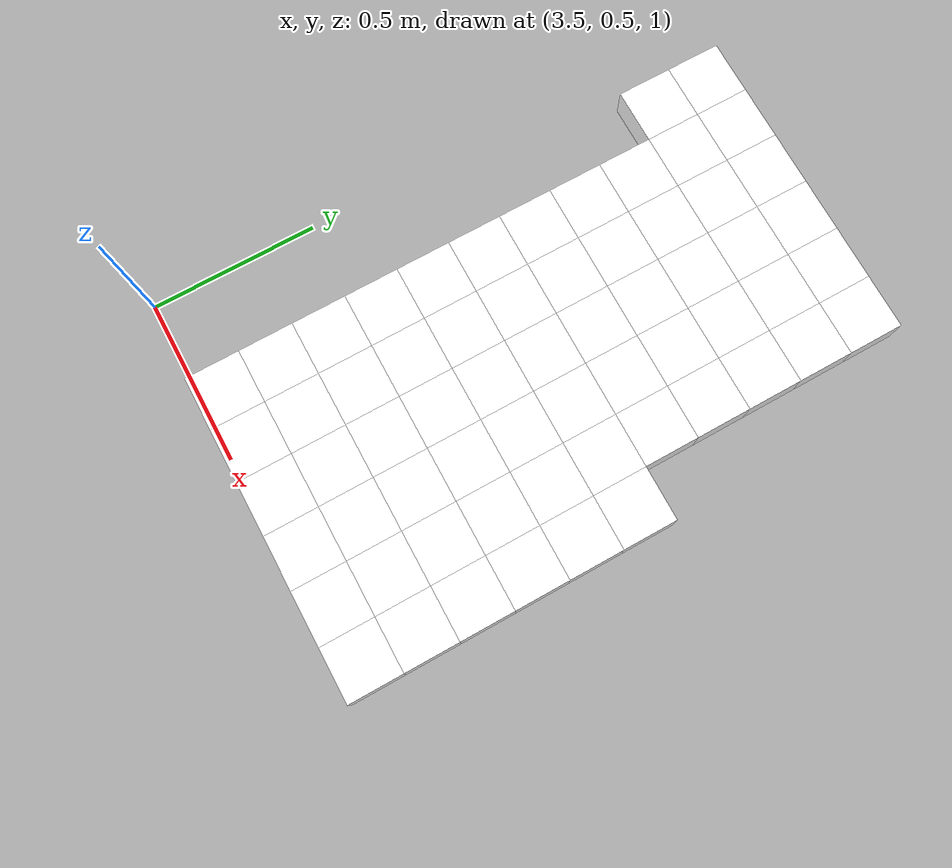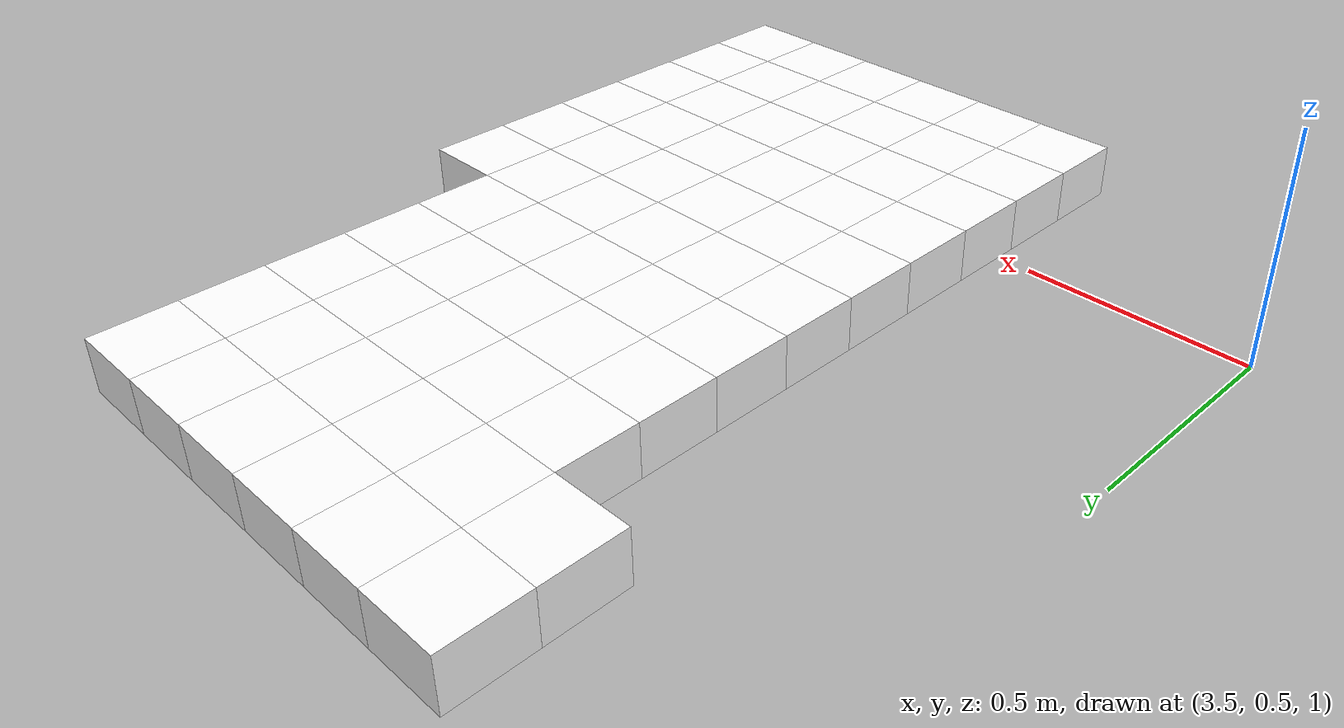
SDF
<sdf version="1.7">
 <world name="default">
  <include><uri>model://sun</uri></include>
  <model name="static_environment">
   <static>true</static>
   <link name="region_802">
    <pose>3.9250000000000007 0.6 1.3 0.0 0.0 0.0</pose>
    <collision name="region_802_collision">
     <geometry><box><size>0.15 0.15 0.1</size></box></geometry>
     <surface><friction><ode><mu>1.0</mu><mu2>1.0</mu2></ode></friction></surface>
    </collision>
    <visual name="region_802_visual">
     <geometry><box><size>0.15 0.15 0.1</size></box></geometry>
     <material><ambient>1.0 1.0 1.0 1.0</ambient><diffuse>1.0 1.0 1.0 1.0</diffuse></material>
    </visual>
   </link>
   <link name="region_803">
    <pose>4.075000000000001 0.6 1.3 0.0 0.0 0.0</pose>
    <collision name="region_803_collision">
     <geometry><box><size>0.15 0.15 0.1</size></box></geometry>
     <surface><friction><ode><mu>1.0</mu><mu2>1.0</mu2></ode></friction></surface>
    </collision>
    <visual name="region_803_visual">
     <geometry><box><size>0.15 0.15 0.1</size></box></geometry>
     <material><ambient>1.0 1.0 1.0 1.0</ambient><diffuse>1.0 1.0 1.0 1.0</diffuse></material>
    </visual>
   </link>
   <link name="region_804">
    <pose>4.225000000000001 0.6 1.3 0.0 0.0 0.0</pose>
    <collision name="region_804_collision">
     <geometry><box><size>0.15 0.15 0.1</size></box></geometry>
     <surface><friction><ode><mu>1.0</mu><mu2>1.0</mu2></ode></friction></surface>
    </collision>
    <visual name="region_804_visual">
     <geometry><box><size>0.15 0.15 0.1</size></box></geometry>
     <material><ambient>1.0 1.0 1.0 1.0</ambient><diffuse>1.0 1.0 1.0 1.0</diffuse></material>
    </visual>
   </link>
   <link name="region_805">
    <pose>4.375000000000002 0.6 1.3 0.0 0.0 0.0</pose>
    <collision name="region_805_collision">
     <geometry><box><size>0.15 0.15 0.1</size></box></geometry>
     <surface><friction><ode><mu>1.0</mu><mu2>1.0</mu2></ode></friction></surface>
    </collision>
    <visual name="region_805_visual">
     <geometry><box><size>0.15 0.15 0.1</size></box></geometry>
     <material><ambient>1.0 1.0 1.0 1.0</ambient><diffuse>1.0 1.0 1.0 1.0</diffuse></material>
    </visual>
   </link>
   <link name="region_806">
    <pose>4.525000000000002 0.6 1.3 0.0 0.0 0.0</pose>
    <collision name="region_806_collision">
     <geometry><box><size>0.15 0.15 0.1</size></box></geometry>
     <surface><friction><ode><mu>1.0</mu><mu2>1.0</mu2></ode></friction></surface>
    </collision>
    <visual name="region_806_visual">
     <geometry><box><size>0.15 0.15 0.1</size></box></geometry>
     <material><ambient>1.0 1.0 1.0 1.0</ambient><diffuse>1.0 1.0 1.0 1.0</diffuse></material>
    </visual>
   </link>
   <link name="region_807">
    <pose>4.6750000000000025 0.6 1.3 0.0 0.0 0.0</pose>
    <collision name="region_807_collision">
     <geometry><box><size>0.15 0.15 0.1</size></box></geometry>
     <surface><friction><ode><mu>1.0</mu><mu2>1.0</mu2></ode></friction></surface>
    </collision>
    <visual name="region_807_visual">
     <geometry><box><size>0.15 0.15 0.1</size></box></geometry>
     <material><ambient>1.0 1.0 1.0 1.0</ambient><diffuse>1.0 1.0 1.0 1.0</diffuse></material>
    </visual>
   </link>
   <link name="region_822">
    <pose>3.9250000000000007 0.75 1.3 0.0 0.0 0.0</pose>
    <collision name="region_822_collision">
     <geometry><box><size>0.15 0.15 0.1</size></box></geometry>
     <surface><friction><ode><mu>1.0</mu><mu2>1.0</mu2></ode></friction></surface>
    </collision>
    <visual name="region_822_visual">
     <geometry><box><size>0.15 0.15 0.1</size></box></geometry>
     <material><ambient>1.0 1.0 1.0 1.0</ambient><diffuse>1.0 1.0 1.0 1.0</diffuse></material>
    </visual>
   </link>
   <link name="region_823">
    <pose>4.075000000000001 0.75 1.3 0.0 0.0 0.0</pose>
    <collision name="region_823_collision">
     <geometry><box><size>0.15 0.15 0.1</size></box></geometry>
     <surface><friction><ode><mu>1.0</mu><mu2>1.0</mu2></ode></friction></surface>
    </collision>
    <visual name="region_823_visual">
     <geometry><box><size>0.15 0.15 0.1</size></box></geometry>
     <material><ambient>1.0 1.0 1.0 1.0</ambient><diffuse>1.0 1.0 1.0 1.0</diffuse></material>
    </visual>
   </link>
   <link name="region_824">
    <pose>4.225000000000001 0.75 1.3 0.0 0.0 0.0</pose>
    <collision name="region_824_collision">
     <geometry><box><size>0.15 0.15 0.1</size></box></geometry>
     <surface><friction><ode><mu>1.0</mu><mu2>1.0</mu2></ode></friction></surface>
    </collision>
    <visual name="region_824_visual">
     <geometry><box><size>0.15 0.15 0.1</size></box></geometry>
     <material><ambient>1.0 1.0 1.0 1.0</ambient><diffuse>1.0 1.0 1.0 1.0</diffuse></material>
    </visual>
   </link>
   <link name="region_825">
    <pose>4.375000000000002 0.75 1.3 0.0 0.0 0.0</pose>
    <collision name="region_825_collision">
     <geometry><box><size>0.15 0.15 0.1</size></box></geometry>
     <surface><friction><ode><mu>1.0</mu><mu2>1.0</mu2></ode></friction></surface>
    </collision>
    <visual name="region_825_visual">
     <geometry><box><size>0.15 0.15 0.1</size></box></geometry>
     <material><ambient>1.0 1.0 1.0 1.0</ambient><diffuse>1.0 1.0 1.0 1.0</diffuse></material>
    </visual>
   </link>
   <link name="region_826">
    <pose>4.525000000000002 0.75 1.3 0.0 0.0 0.0</pose>
    <collision name="region_826_collision">
     <geometry><box><size>0.15 0.15 0.1</size></box></geometry>
     <surface><friction><ode><mu>1.0</mu><mu2>1.0</mu2></ode></friction></surface>
    </collision>
    <visual name="region_826_visual">
     <geometry><box><size>0.15 0.15 0.1</size></box></geometry>
     <material><ambient>1.0 1.0 1.0 1.0</ambient><diffuse>1.0 1.0 1.0 1.0</diffuse></material>
    </visual>
   </link>
   <link name="region_827">
    <pose>4.6750000000000025 0.75 1.3 0.0 0.0 0.0</pose>
    <collision name="region_827_collision">
     <geometry><box><size>0.15 0.15 0.1</size></box></geometry>
     <surface><friction><ode><mu>1.0</mu><mu2>1.0</mu2></ode></friction></surface>
    </collision>
    <visual name="region_827_visual">
     <geometry><box><size>0.15 0.15 0.1</size></box></geometry>
     <material><ambient>1.0 1.0 1.0 1.0</ambient><diffuse>1.0 1.0 1.0 1.0</diffuse></material>
    </visual>
   </link>
   <link name="region_842">
    <pose>3.9250000000000007 0.8999999999999999 1.3 0.0 0.0 0.0</pose>
    <collision name="region_842_collision">
     <geometry><box><size>0.15 0.15 0.1</size></box></geometry>
     <surface><friction><ode><mu>1.0</mu><mu2>1.0</mu2></ode></friction></surface>
    </collision>
    <visual name="region_842_visual">
     <geometry><box><size>0.15 0.15 0.1</size></box></geometry>
     <material><ambient>1.0 1.0 1.0 1.0</ambient><diffuse>1.0 1.0 1.0 1.0</diffuse></material>
    </visual>
   </link>
   <link name="region_843">
    <pose>4.075000000000001 0.8999999999999999 1.3 0.0 0.0 0.0</pose>
    <collision name="region_843_collision">
     <geometry><box><size>0.15 0.15 0.1</size></box></geometry>
     <surface><friction><ode><mu>1.0</mu><mu2>1.0</mu2></ode></friction></surface>
    </collision>
    <visual name="region_843_visual">
     <geometry><box><size>0.15 0.15 0.1</size></box></geometry>
     <material><ambient>1.0 1.0 1.0 1.0</ambient><diffuse>1.0 1.0 1.0 1.0</diffuse></material>
    </visual>
   </link>
   <link name="region_844">
    <pose>4.225000000000001 0.8999999999999999 1.3 0.0 0.0 0.0</pose>
    <collision name="region_844_collision">
     <geometry><box><size>0.15 0.15 0.1</size></box></geometry>
     <surface><friction><ode><mu>1.0</mu><mu2>1.0</mu2></ode></friction></surface>
    </collision>
    <visual name="region_844_visual">
     <geometry><box><size>0.15 0.15 0.1</size></box></geometry>
     <material><ambient>1.0 1.0 1.0 1.0</ambient><diffuse>1.0 1.0 1.0 1.0</diffuse></material>
    </visual>
   </link>
   <link name="region_845">
    <pose>4.375000000000002 0.8999999999999999 1.3 0.0 0.0 0.0</pose>
    <collision name="region_845_collision">
     <geometry><box><size>0.15 0.15 0.1</size></box></geometry>
     <surface><friction><ode><mu>1.0</mu><mu2>1.0</mu2></ode></friction></surface>
    </collision>
    <visual name="region_845_visual">
     <geometry><box><size>0.15 0.15 0.1</size></box></geometry>
     <material><ambient>1.0 1.0 1.0 1.0</ambient><diffuse>1.0 1.0 1.0 1.0</diffuse></material>
    </visual>
   </link>
   <link name="region_846">
    <pose>4.525000000000002 0.8999999999999999 1.3 0.0 0.0 0.0</pose>
    <collision name="region_846_collision">
     <geometry><box><size>0.15 0.15 0.1</size></box></geometry>
     <surface><friction><ode><mu>1.0</mu><mu2>1.0</mu2></ode></friction></surface>
    </collision>
    <visual name="region_846_visual">
     <geometry><box><size>0.15 0.15 0.1</size></box></geometry>
     <material><ambient>1.0 1.0 1.0 1.0</ambient><diffuse>1.0 1.0 1.0 1.0</diffuse></material>
    </visual>
   </link>
   <link name="region_847">
    <pose>4.6750000000000025 0.8999999999999999 1.3 0.0 0.0 0.0</pose>
    <collision name="region_847_collision">
     <geometry><box><size>0.15 0.15 0.1</size></box></geometry>
     <surface><friction><ode><mu>1.0</mu><mu2>1.0</mu2></ode></friction></surface>
    </collision>
    <visual name="region_847_visual">
     <geometry><box><size>0.15 0.15 0.1</size></box></geometry>
     <material><ambient>1.0 1.0 1.0 1.0</ambient><diffuse>1.0 1.0 1.0 1.0</diffuse></material>
    </visual>
   </link>
   <link name="region_862">
    <pose>3.9250000000000007 1.0499999999999998 1.3 0.0 0.0 0.0</pose>
    <collision name="region_862_collision">
     <geometry><box><size>0.15 0.15 0.1</size></box></geometry>
     <surface><friction><ode><mu>1.0</mu><mu2>1.0</mu2></ode></friction></surface>
    </collision>
    <visual name="region_862_visual">
     <geometry><box><size>0.15 0.15 0.1</size></box></geometry>
     <material><ambient>1.0 1.0 1.0 1.0</ambient><diffuse>1.0 1.0 1.0 1.0</diffuse></material>
    </visual>
   </link>
   <link name="region_863">
    <pose>4.075000000000001 1.0499999999999998 1.3 0.0 0.0 0.0</pose>
    <collision name="region_863_collision">
     <geometry><box><size>0.15 0.15 0.1</size></box></geometry>
     <surface><friction><ode><mu>1.0</mu><mu2>1.0</mu2></ode></friction></surface>
    </collision>
    <visual name="region_863_visual">
     <geometry><box><size>0.15 0.15 0.1</size></box></geometry>
     <material><ambient>1.0 1.0 1.0 1.0</ambient><diffuse>1.0 1.0 1.0 1.0</diffuse></material>
    </visual>
   </link>
   <link name="region_864">
    <pose>4.225000000000001 1.0499999999999998 1.3 0.0 0.0 0.0</pose>
    <collision name="region_864_collision">
     <geometry><box><size>0.15 0.15 0.1</size></box></geometry>
     <surface><friction><ode><mu>1.0</mu><mu2>1.0</mu2></ode></friction></surface>
    </collision>
    <visual name="region_864_visual">
     <geometry><box><size>0.15 0.15 0.1</size></box></geometry>
     <material><ambient>1.0 1.0 1.0 1.0</ambient><diffuse>1.0 1.0 1.0 1.0</diffuse></material>
    </visual>
   </link>
   <link name="region_865">
    <pose>4.375000000000002 1.0499999999999998 1.3 0.0 0.0 0.0</pose>
    <collision name="region_865_collision">
     <geometry><box><size>0.15 0.15 0.1</size></box></geometry>
     <surface><friction><ode><mu>1.0</mu><mu2>1.0</mu2></ode></friction></surface>
    </collision>
    <visual name="region_865_visual">
     <geometry><box><size>0.15 0.15 0.1</size></box></geometry>
     <material><ambient>1.0 1.0 1.0 1.0</ambient><diffuse>1.0 1.0 1.0 1.0</diffuse></material>
    </visual>
   </link>
   <link name="region_866">
    <pose>4.525000000000002 1.0499999999999998 1.3 0.0 0.0 0.0</pose>
    <collision name="region_866_collision">
     <geometry><box><size>0.15 0.15 0.1</size></box></geometry>
     <surface><friction><ode><mu>1.0</mu><mu2>1.0</mu2></ode></friction></surface>
    </collision>
    <visual name="region_866_visual">
     <geometry><box><size>0.15 0.15 0.1</size></box></geometry>
     <material><ambient>1.0 1.0 1.0 1.0</ambient><diffuse>1.0 1.0 1.0 1.0</diffuse></material>
    </visual>
   </link>
   <link name="region_867">
    <pose>4.6750000000000025 1.0499999999999998 1.3 0.0 0.0 0.0</pose>
    <collision name="region_867_collision">
     <geometry><box><size>0.15 0.15 0.1</size></box></geometry>
     <surface><friction><ode><mu>1.0</mu><mu2>1.0</mu2></ode></friction></surface>
    </collision>
    <visual name="region_867_visual">
     <geometry><box><size>0.15 0.15 0.1</size></box></geometry>
     <material><ambient>1.0 1.0 1.0 1.0</ambient><diffuse>1.0 1.0 1.0 1.0</diffuse></material>
    </visual>
   </link>
   <link name="region_882">
    <pose>3.9250000000000007 1.2 1.3 0.0 0.0 0.0</pose>
    <collision name="region_882_collision">
     <geometry><box><size>0.15 0.15 0.1</size></box></geometry>
     <surface><friction><ode><mu>1.0</mu><mu2>1.0</mu2></ode></friction></surface>
    </collision>
    <visual name="region_882_visual">
     <geometry><box><size>0.15 0.15 0.1</size></box></geometry>
     <material><ambient>1.0 1.0 1.0 1.0</ambient><diffuse>1.0 1.0 1.0 1.0</diffuse></material>
    </visual>
   </link>
   <link name="region_883">
    <pose>4.075000000000001 1.2 1.3 0.0 0.0 0.0</pose>
    <collision name="region_883_collision">
     <geometry><box><size>0.15 0.15 0.1</size></box></geometry>
     <surface><friction><ode><mu>1.0</mu><mu2>1.0</mu2></ode></friction></surface>
    </collision>
    <visual name="region_883_visual">
     <geometry><box><size>0.15 0.15 0.1</size></box></geometry>
     <material><ambient>1.0 1.0 1.0 1.0</ambient><diffuse>1.0 1.0 1.0 1.0</diffuse></material>
    </visual>
   </link>
   <link name="region_884">
    <pose>4.225000000000001 1.2 1.3 0.0 0.0 0.0</pose>
    <collision name="region_884_collision">
     <geometry><box><size>0.15 0.15 0.1</size></box></geometry>
     <surface><friction><ode><mu>1.0</mu><mu2>1.0</mu2></ode></friction></surface>
    </collision>
    <visual name="region_884_visual">
     <geometry><box><size>0.15 0.15 0.1</size></box></geometry>
     <material><ambient>1.0 1.0 1.0 1.0</ambient><diffuse>1.0 1.0 1.0 1.0</diffuse></material>
    </visual>
   </link>
   <link name="region_885">
    <pose>4.375000000000002 1.2 1.3 0.0 0.0 0.0</pose>
    <collision name="region_885_collision">
     <geometry><box><size>0.15 0.15 0.1</size></box></geometry>
     <surface><friction><ode><mu>1.0</mu><mu2>1.0</mu2></ode></friction></surface>
    </collision>
    <visual name="region_885_visual">
     <geometry><box><size>0.15 0.15 0.1</size></box></geometry>
     <material><ambient>1.0 1.0 1.0 1.0</ambient><diffuse>1.0 1.0 1.0 1.0</diffuse></material>
    </visual>
   </link>
   <link name="region_886">
    <pose>4.525000000000002 1.2 1.3 0.0 0.0 0.0</pose>
    <collision name="region_886_collision">
     <geometry><box><size>0.15 0.15 0.1</size></box></geometry>
     <surface><friction><ode><mu>1.0</mu><mu2>1.0</mu2></ode></friction></surface>
    </collision>
    <visual name="region_886_visual">
     <geometry><box><size>0.15 0.15 0.1</size></box></geometry>
     <material><ambient>1.0 1.0 1.0 1.0</ambient><diffuse>1.0 1.0 1.0 1.0</diffuse></material>
    </visual>
   </link>
   <link name="region_887">
    <pose>4.6750000000000025 1.2 1.3 0.0 0.0 0.0</pose>
    <collision name="region_887_collision">
     <geometry><box><size>0.15 0.15 0.1</size></box></geometry>
     <surface><friction><ode><mu>1.0</mu><mu2>1.0</mu2></ode></friction></surface>
    </collision>
    <visual name="region_887_visual">
     <geometry><box><size>0.15 0.15 0.1</size></box></geometry>
     <material><ambient>1.0 1.0 1.0 1.0</ambient><diffuse>1.0 1.0 1.0 1.0</diffuse></material>
    </visual>
   </link>
   <link name="region_902">
    <pose>3.9250000000000007 1.35 1.3 0.0 0.0 0.0</pose>
    <collision name="region_902_collision">
     <geometry><box><size>0.15 0.15 0.1</size></box></geometry>
     <surface><friction><ode><mu>1.0</mu><mu2>1.0</mu2></ode></friction></surface>
    </collision>
    <visual name="region_902_visual">
     <geometry><box><size>0.15 0.15 0.1</size></box></geometry>
     <material><ambient>1.0 1.0 1.0 1.0</ambient><diffuse>1.0 1.0 1.0 1.0</diffuse></material>
    </visual>
   </link>
   <link name="region_903">
    <pose>4.075000000000001 1.35 1.3 0.0 0.0 0.0</pose>
    <collision name="region_903_collision">
     <geometry><box><size>0.15 0.15 0.1</size></box></geometry>
     <surface><friction><ode><mu>1.0</mu><mu2>1.0</mu2></ode></friction></surface>
    </collision>
    <visual name="region_903_visual">
     <geometry><box><size>0.15 0.15 0.1</size></box></geometry>
     <material><ambient>1.0 1.0 1.0 1.0</ambient><diffuse>1.0 1.0 1.0 1.0</diffuse></material>
    </visual>
   </link>
   <link name="region_904">
    <pose>4.225000000000001 1.35 1.3 0.0 0.0 0.0</pose>
    <collision name="region_904_collision">
     <geometry><box><size>0.15 0.15 0.1</size></box></geometry>
     <surface><friction><ode><mu>1.0</mu><mu2>1.0</mu2></ode></friction></surface>
    </collision>
    <visual name="region_904_visual">
     <geometry><box><size>0.15 0.15 0.1</size></box></geometry>
     <material><ambient>1.0 1.0 1.0 1.0</ambient><diffuse>1.0 1.0 1.0 1.0</diffuse></material>
    </visual>
   </link>
   <link name="region_905">
    <pose>4.375000000000002 1.35 1.3 0.0 0.0 0.0</pose>
    <collision name="region_905_collision">
     <geometry><box><size>0.15 0.15 0.1</size></box></geometry>
     <surface><friction><ode><mu>1.0</mu><mu2>1.0</mu2></ode></friction></surface>
    </collision>
    <visual name="region_905_visual">
     <geometry><box><size>0.15 0.15 0.1</size></box></geometry>
     <material><ambient>1.0 1.0 1.0 1.0</ambient><diffuse>1.0 1.0 1.0 1.0</diffuse></material>
    </visual>
   </link>
   <link name="region_906">
    <pose>4.525000000000002 1.35 1.3 0.0 0.0 0.0</pose>
    <collision name="region_906_collision">
     <geometry><box><size>0.15 0.15 0.1</size></box></geometry>
     <surface><friction><ode><mu>1.0</mu><mu2>1.0</mu2></ode></friction></surface>
    </collision>
    <visual name="region_906_visual">
     <geometry><box><size>0.15 0.15 0.1</size></box></geometry>
     <material><ambient>1.0 1.0 1.0 1.0</ambient><diffuse>1.0 1.0 1.0 1.0</diffuse></material>
    </visual>
   </link>
   <link name="region_907">
    <pose>4.6750000000000025 1.35 1.3 0.0 0.0 0.0</pose>
    <collision name="region_907_collision">
     <geometry><box><size>0.15 0.15 0.1</size></box></geometry>
     <surface><friction><ode><mu>1.0</mu><mu2>1.0</mu2></ode></friction></surface>
    </collision>
    <visual name="region_907_visual">
     <geometry><box><size>0.15 0.15 0.1</size></box></geometry>
     <material><ambient>1.0 1.0 1.0 1.0</ambient><diffuse>1.0 1.0 1.0 1.0</diffuse></material>
    </visual>
   </link>
   <link name="region_922">
    <pose>3.9250000000000007 1.5 1.3 0.0 0.0 0.0</pose>
    <collision name="region_922_collision">
     <geometry><box><size>0.15 0.15 0.1</size></box></geometry>
     <surface><friction><ode><mu>1.0</mu><mu2>1.0</mu2></ode></friction></surface>
    </collision>
    <visual name="region_922_visual">
     <geometry><box><size>0.15 0.15 0.1</size></box></geometry>
     <material><ambient>1.0 1.0 1.0 1.0</ambient><diffuse>1.0 1.0 1.0 1.0</diffuse></material>
    </visual>
   </link>
   <link name="region_923">
    <pose>4.075000000000001 1.5 1.3 0.0 0.0 0.0</pose>
    <collision name="region_923_collision">
     <geometry><box><size>0.15 0.15 0.1</size></box></geometry>
     <surface><friction><ode><mu>1.0</mu><mu2>1.0</mu2></ode></friction></surface>
    </collision>
    <visual name="region_923_visual">
     <geometry><box><size>0.15 0.15 0.1</size></box></geometry>
     <material><ambient>1.0 1.0 1.0 1.0</ambient><diffuse>1.0 1.0 1.0 1.0</diffuse></material>
    </visual>
   </link>
   <link name="region_924">
    <pose>4.225000000000001 1.5 1.3 0.0 0.0 0.0</pose>
    <collision name="region_924_collision">
     <geometry><box><size>0.15 0.15 0.1</size></box></geometry>
     <surface><friction><ode><mu>1.0</mu><mu2>1.0</mu2></ode></friction></surface>
    </collision>
    <visual name="region_924_visual">
     <geometry><box><size>0.15 0.15 0.1</size></box></geometry>
     <material><ambient>1.0 1.0 1.0 1.0</ambient><diffuse>1.0 1.0 1.0 1.0</diffuse></material>
    </visual>
   </link>
   <link name="region_925">
    <pose>4.375000000000002 1.5 1.3 0.0 0.0 0.0</pose>
    <collision name="region_925_collision">
     <geometry><box><size>0.15 0.15 0.1</size></box></geometry>
     <surface><friction><ode><mu>1.0</mu><mu2>1.0</mu2></ode></friction></surface>
    </collision>
    <visual name="region_925_visual">
     <geometry><box><size>0.15 0.15 0.1</size></box></geometry>
     <material><ambient>1.0 1.0 1.0 1.0</ambient><diffuse>1.0 1.0 1.0 1.0</diffuse></material>
    </visual>
   </link>
   <link name="region_926">
    <pose>4.525000000000002 1.5 1.3 0.0 0.0 0.0</pose>
    <collision name="region_926_collision">
     <geometry><box><size>0.15 0.15 0.1</size></box></geometry>
     <surface><friction><ode><mu>1.0</mu><mu2>1.0</mu2></ode></friction></surface>
    </collision>
    <visual name="region_926_visual">
     <geometry><box><size>0.15 0.15 0.1</size></box></geometry>
     <material><ambient>1.0 1.0 1.0 1.0</ambient><diffuse>1.0 1.0 1.0 1.0</diffuse></material>
    </visual>
   </link>
   <link name="region_942">
    <pose>3.9250000000000007 1.65 1.3 0.0 0.0 0.0</pose>
    <collision name="region_942_collision">
     <geometry><box><size>0.15 0.15 0.1</size></box></geometry>
     <surface><friction><ode><mu>1.0</mu><mu2>1.0</mu2></ode></friction></surface>
    </collision>
    <visual name="region_942_visual">
     <geometry><box><size>0.15 0.15 0.1</size></box></geometry>
     <material><ambient>1.0 1.0 1.0 1.0</ambient><diffuse>1.0 1.0 1.0 1.0</diffuse></material>
    </visual>
   </link>
   <link name="region_943">
    <pose>4.075000000000001 1.65 1.3 0.0 0.0 0.0</pose>
    <collision name="region_943_collision">
     <geometry><box><size>0.15 0.15 0.1</size></box></geometry>
     <surface><friction><ode><mu>1.0</mu><mu2>1.0</mu2></ode></friction></surface>
    </collision>
    <visual name="region_943_visual">
     <geometry><box><size>0.15 0.15 0.1</size></box></geometry>
     <material><ambient>1.0 1.0 1.0 1.0</ambient><diffuse>1.0 1.0 1.0 1.0</diffuse></material>
    </visual>
   </link>
   <link name="region_944">
    <pose>4.225000000000001 1.65 1.3 0.0 0.0 0.0</pose>
    <collision name="region_944_collision">
     <geometry><box><size>0.15 0.15 0.1</size></box></geometry>
     <surface><friction><ode><mu>1.0</mu><mu2>1.0</mu2></ode></friction></surface>
    </collision>
    <visual name="region_944_visual">
     <geometry><box><size>0.15 0.15 0.1</size></box></geometry>
     <material><ambient>1.0 1.0 1.0 1.0</ambient><diffuse>1.0 1.0 1.0 1.0</diffuse></material>
    </visual>
   </link>
   <link name="region_945">
    <pose>4.375000000000002 1.65 1.3 0.0 0.0 0.0</pose>
    <collision name="region_945_collision">
     <geometry><box><size>0.15 0.15 0.1</size></box></geometry>
     <surface><friction><ode><mu>1.0</mu><mu2>1.0</mu2></ode></friction></surface>
    </collision>
    <visual name="region_945_visual">
     <geometry><box><size>0.15 0.15 0.1</size></box></geometry>
     <material><ambient>1.0 1.0 1.0 1.0</ambient><diffuse>1.0 1.0 1.0 1.0</diffuse></material>
    </visual>
   </link>
   <link name="region_946">
    <pose>4.525000000000002 1.65 1.3 0.0 0.0 0.0</pose>
    <collision name="region_946_collision">
     <geometry><box><size>0.15 0.15 0.1</size></box></geometry>
     <surface><friction><ode><mu>1.0</mu><mu2>1.0</mu2></ode></friction></surface>
    </collision>
    <visual name="region_946_visual">
     <geometry><box><size>0.15 0.15 0.1</size></box></geometry>
     <material><ambient>1.0 1.0 1.0 1.0</ambient><diffuse>1.0 1.0 1.0 1.0</diffuse></material>
    </visual>
   </link>
   <link name="region_962">
    <pose>3.9250000000000007 1.7999999999999998 1.3 0.0 0.0 0.0</pose>
    <collision name="region_962_collision">
     <geometry><box><size>0.15 0.15 0.1</size></box></geometry>
     <surface><friction><ode><mu>1.0</mu><mu2>1.0</mu2></ode></friction></surface>
    </collision>
    <visual name="region_962_visual">
     <geometry><box><size>0.15 0.15 0.1</size></box></geometry>
     <material><ambient>1.0 1.0 1.0 1.0</ambient><diffuse>1.0 1.0 1.0 1.0</diffuse></material>
    </visual>
   </link>
   <link name="region_963">
    <pose>4.075000000000001 1.7999999999999998 1.3 0.0 0.0 0.0</pose>
    <collision name="region_963_collision">
     <geometry><box><size>0.15 0.15 0.1</size></box></geometry>
     <surface><friction><ode><mu>1.0</mu><mu2>1.0</mu2></ode></friction></surface>
    </collision>
    <visual name="region_963_visual">
     <geometry><box><size>0.15 0.15 0.1</size></box></geometry>
     <material><ambient>1.0 1.0 1.0 1.0</ambient><diffuse>1.0 1.0 1.0 1.0</diffuse></material>
    </visual>
   </link>
   <link name="region_964">
    <pose>4.225000000000001 1.7999999999999998 1.3 0.0 0.0 0.0</pose>
    <collision name="region_964_collision">
     <geometry><box><size>0.15 0.15 0.1</size></box></geometry>
     <surface><friction><ode><mu>1.0</mu><mu2>1.0</mu2></ode></friction></surface>
    </collision>
    <visual name="region_964_visual">
     <geometry><box><size>0.15 0.15 0.1</size></box></geometry>
     <material><ambient>1.0 1.0 1.0 1.0</ambient><diffuse>1.0 1.0 1.0 1.0</diffuse></material>
    </visual>
   </link>
   <link name="region_965">
    <pose>4.375000000000002 1.7999999999999998 1.3 0.0 0.0 0.0</pose>
    <collision name="region_965_collision">
     <geometry><box><size>0.15 0.15 0.1</size></box></geometry>
     <surface><friction><ode><mu>1.0</mu><mu2>1.0</mu2></ode></friction></surface>
    </collision>
    <visual name="region_965_visual">
     <geometry><box><size>0.15 0.15 0.1</size></box></geometry>
     <material><ambient>1.0 1.0 1.0 1.0</ambient><diffuse>1.0 1.0 1.0 1.0</diffuse></material>
    </visual>
   </link>
   <link name="region_966">
    <pose>4.525000000000002 1.7999999999999998 1.3 0.0 0.0 0.0</pose>
    <collision name="region_966_collision">
     <geometry><box><size>0.15 0.15 0.1</size></box></geometry>
     <surface><friction><ode><mu>1.0</mu><mu2>1.0</mu2></ode></friction></surface>
    </collision>
    <visual name="region_966_visual">
     <geometry><box><size>0.15 0.15 0.1</size></box></geometry>
     <material><ambient>1.0 1.0 1.0 1.0</ambient><diffuse>1.0 1.0 1.0 1.0</diffuse></material>
    </visual>
   </link>
   <link name="region_981">
    <pose>3.7750000000000004 1.9499999999999997 1.3 0.0 0.0 0.0</pose>
    <collision name="region_981_collision">
     <geometry><box><size>0.15 0.15 0.1</size></box></geometry>
     <surface><friction><ode><mu>1.0</mu><mu2>1.0</mu2></ode></friction></surface>
    </collision>
    <visual name="region_981_visual">
     <geometry><box><size>0.15 0.15 0.1</size></box></geometry>
     <material><ambient>1.0 1.0 1.0 1.0</ambient><diffuse>1.0 1.0 1.0 1.0</diffuse></material>
    </visual>
   </link>
   <link name="region_982">
    <pose>3.9250000000000007 1.9499999999999997 1.3 0.0 0.0 0.0</pose>
    <collision name="region_982_collision">
     <geometry><box><size>0.15 0.15 0.1</size></box></geometry>
     <surface><friction><ode><mu>1.0</mu><mu2>1.0</mu2></ode></friction></surface>
    </collision>
    <visual name="region_982_visual">
     <geometry><box><size>0.15 0.15 0.1</size></box></geometry>
     <material><ambient>1.0 1.0 1.0 1.0</ambient><diffuse>1.0 1.0 1.0 1.0</diffuse></material>
    </visual>
   </link>
   <link name="region_983">
    <pose>4.075000000000001 1.9499999999999997 1.3 0.0 0.0 0.0</pose>
    <collision name="region_983_collision">
     <geometry><box><size>0.15 0.15 0.1</size></box></geometry>
     <surface><friction><ode><mu>1.0</mu><mu2>1.0</mu2></ode></friction></surface>
    </collision>
    <visual name="region_983_visual">
     <geometry><box><size>0.15 0.15 0.1</size></box></geometry>
     <material><ambient>1.0 1.0 1.0 1.0</ambient><diffuse>1.0 1.0 1.0 1.0</diffuse></material>
    </visual>
   </link>
   <link name="region_984">
    <pose>4.225000000000001 1.9499999999999997 1.3 0.0 0.0 0.0</pose>
    <collision name="region_984_collision">
     <geometry><box><size>0.15 0.15 0.1</size></box></geometry>
     <surface><friction><ode><mu>1.0</mu><mu2>1.0</mu2></ode></friction></surface>
    </collision>
    <visual name="region_984_visual">
     <geometry><box><size>0.15 0.15 0.1</size></box></geometry>
     <material><ambient>1.0 1.0 1.0 1.0</ambient><diffuse>1.0 1.0 1.0 1.0</diffuse></material>
    </visual>
   </link>
   <link name="region_985">
    <pose>4.375000000000002 1.9499999999999997 1.3 0.0 0.0 0.0</pose>
    <collision name="region_985_collision">
     <geometry><box><size>0.15 0.15 0.1</size></box></geometry>
     <surface><friction><ode><mu>1.0</mu><mu2>1.0</mu2></ode></friction></surface>
    </collision>
    <visual name="region_985_visual">
     <geometry><box><size>0.15 0.15 0.1</size></box></geometry>
     <material><ambient>1.0 1.0 1.0 1.0</ambient><diffuse>1.0 1.0 1.0 1.0</diffuse></material>
    </visual>
   </link>
   <link name="region_986">
    <pose>4.525000000000002 1.9499999999999997 1.3 0.0 0.0 0.0</pose>
    <collision name="region_986_collision">
     <geometry><box><size>0.15 0.15 0.1</size></box></geometry>
     <surface><friction><ode><mu>1.0</mu><mu2>1.0</mu2></ode></friction></surface>
    </collision>
    <visual name="region_986_visual">
     <geometry><box><size>0.15 0.15 0.1</size></box></geometry>
     <material><ambient>1.0 1.0 1.0 1.0</ambient><diffuse>1.0 1.0 1.0 1.0</diffuse></material>
    </visual>
   </link>
   <link name="region_1001">
    <pose>3.7750000000000004 2.0999999999999996 1.3 0.0 0.0 0.0</pose>
    <collision name="region_1001_collision">
     <geometry><box><size>0.15 0.15 0.1</size></box></geometry>
     <surface><friction><ode><mu>1.0</mu><mu2>1.0</mu2></ode></friction></surface>
    </collision>
    <visual name="region_1001_visual">
     <geometry><box><size>0.15 0.15 0.1</size></box></geometry>
     <material><ambient>1.0 1.0 1.0 1.0</ambient><diffuse>1.0 1.0 1.0 1.0</diffuse></material>
    </visual>
   </link>
   <link name="region_1002">
    <pose>3.9250000000000007 2.0999999999999996 1.3 0.0 0.0 0.0</pose>
    <collision name="region_1002_collision">
     <geometry><box><size>0.15 0.15 0.1</size></box></geometry>
     <surface><friction><ode><mu>1.0</mu><mu2>1.0</mu2></ode></friction></surface>
    </collision>
    <visual name="region_1002_visual">
     <geometry><box><size>0.15 0.15 0.1</size></box></geometry>
     <material><ambient>1.0 1.0 1.0 1.0</ambient><diffuse>1.0 1.0 1.0 1.0</diffuse></material>
    </visual>
   </link>
   <link name="region_1003">
    <pose>4.075000000000001 2.0999999999999996 1.3 0.0 0.0 0.0</pose>
    <collision name="region_1003_collision">
     <geometry><box><size>0.15 0.15 0.1</size></box></geometry>
     <surface><friction><ode><mu>1.0</mu><mu2>1.0</mu2></ode></friction></surface>
    </collision>
    <visual name="region_1003_visual">
     <geometry><box><size>0.15 0.15 0.1</size></box></geometry>
     <material><ambient>1.0 1.0 1.0 1.0</ambient><diffuse>1.0 1.0 1.0 1.0</diffuse></material>
    </visual>
   </link>
   <link name="region_1004">
    <pose>4.225000000000001 2.0999999999999996 1.3 0.0 0.0 0.0</pose>
    <collision name="region_1004_collision">
     <geometry><box><size>0.15 0.15 0.1</size></box></geometry>
     <surface><friction><ode><mu>1.0</mu><mu2>1.0</mu2></ode></friction></surface>
    </collision>
    <visual name="region_1004_visual">
     <geometry><box><size>0.15 0.15 0.1</size></box></geometry>
     <material><ambient>1.0 1.0 1.0 1.0</ambient><diffuse>1.0 1.0 1.0 1.0</diffuse></material>
    </visual>
   </link>
   <link name="region_1005">
    <pose>4.375000000000002 2.0999999999999996 1.3 0.0 0.0 0.0</pose>
    <collision name="region_1005_collision">
     <geometry><box><size>0.15 0.15 0.1</size></box></geometry>
     <surface><friction><ode><mu>1.0</mu><mu2>1.0</mu2></ode></friction></surface>
    </collision>
    <visual name="region_1005_visual">
     <geometry><box><size>0.15 0.15 0.1</size></box></geometry>
     <material><ambient>1.0 1.0 1.0 1.0</ambient><diffuse>1.0 1.0 1.0 1.0</diffuse></material>
    </visual>
   </link>
   <link name="region_1006">
    <pose>4.525000000000002 2.0999999999999996 1.3 0.0 0.0 0.0</pose>
    <collision name="region_1006_collision">
     <geometry><box><size>0.15 0.15 0.1</size></box></geometry>
     <surface><friction><ode><mu>1.0</mu><mu2>1.0</mu2></ode></friction></surface>
    </collision>
    <visual name="region_1006_visual">
     <geometry><box><size>0.15 0.15 0.1</size></box></geometry>
     <material><ambient>1.0 1.0 1.0 1.0</ambient><diffuse>1.0 1.0 1.0 1.0</diffuse></material>
    </visual>
   </link>
  </model>
 </world>
</sdf>
